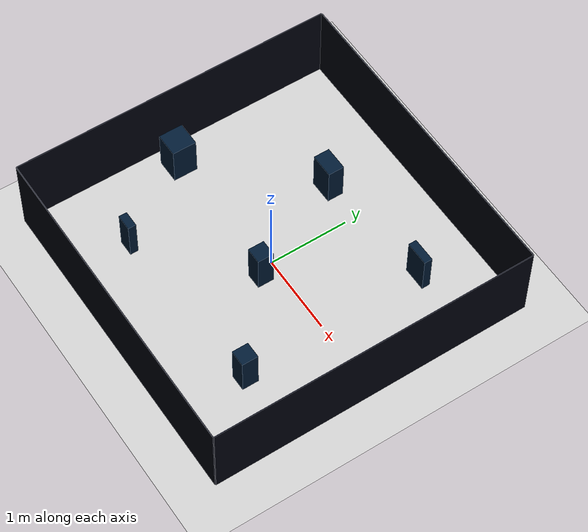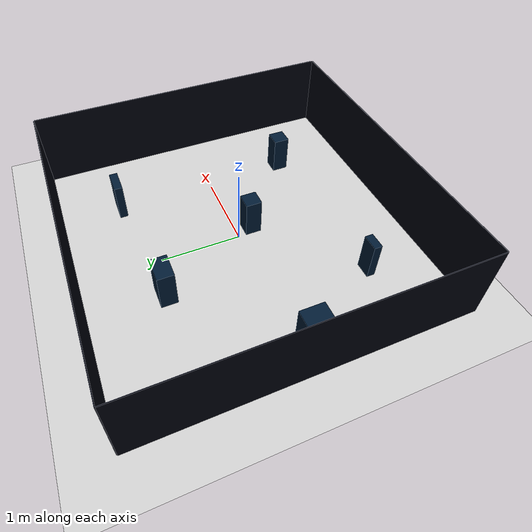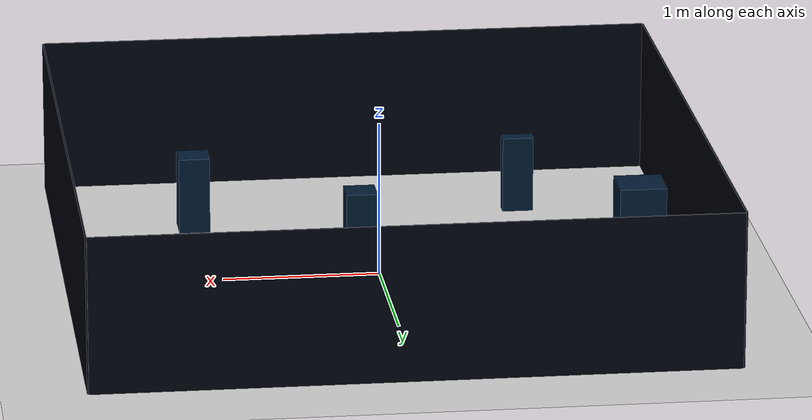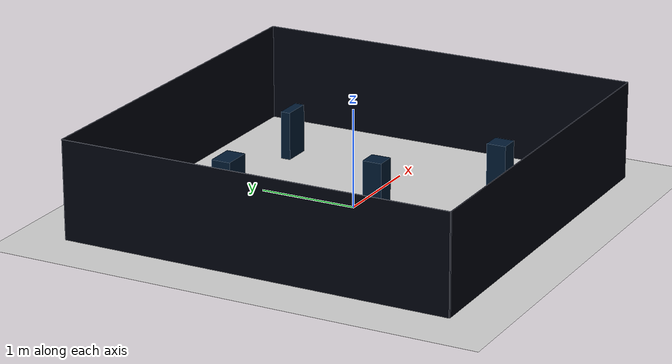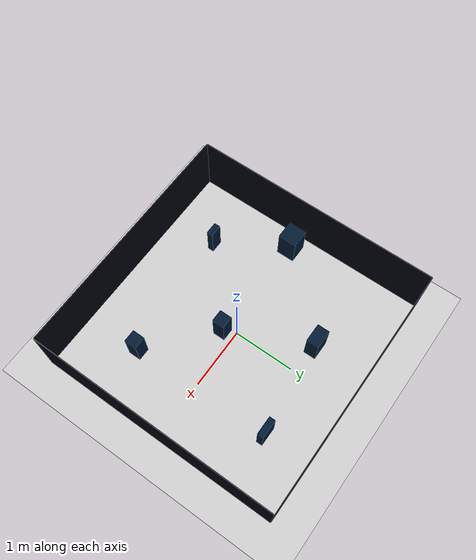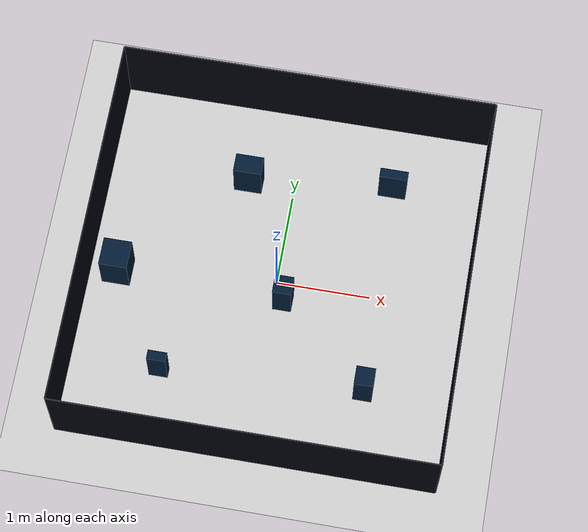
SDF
<?xml version="1.0"?>
<sdf version='1.8'>
    <world name='maze'>
        <physics name='fast_sim' type='ode'>
            <max_step_size>0.003</max_step_size>
            <real_time_factor>200</real_time_factor>
            <real_time_update_rate>1000</real_time_update_rate>
        </physics>

        <plugin name="gz::sim::systems::Physics" filename="gz-sim-physics-system" />
        <plugin name="gz::sim::systems::UserCommands" filename="gz-sim-user-commands-system" />
        <plugin name="gz::sim::systems::SceneBroadcaster" filename="gz-sim-scene-broadcaster-system" />
        <plugin name="gz::sim::systems::Contact" filename="gz-sim-contact-system" />

        <light name='sun' type='directional'>
            <cast_shadows>1</cast_shadows>
            <pose>0 0 10 0 -0 0</pose>
            <diffuse>0.8 0.8 0.8 1</diffuse>
            <specular>0.2 0.2 0.2 1</specular>
            <attenuation>
                <range>1000</range>
                <constant>0.90000000000000002</constant>
                <linear>0.01</linear>
                <quadratic>0.001</quadratic>
            </attenuation>
            <direction>-0.5 0.1 -0.9</direction>
            <spot>
                <inner_angle>0</inner_angle>
                <outer_angle>0</outer_angle>
                <falloff>0</falloff>
            </spot>
        </light>
        <gravity>0 0 -9.8</gravity>
        <magnetic_field>6e-06 2.3e-05 -4.2e-05</magnetic_field>
        <atmosphere type='adiabatic' />
        <scene>
            <ambient>0.4 0.4 0.4 1</ambient>
            <background>0.7 0.7 0.7 1</background>
            <shadows>1</shadows>
        </scene>
        <model name='ground_plane'>
            <static>1</static>
            <link name='link'>
                <collision name='collision'>
                    <geometry>
                        <plane>
                            <normal>0 0 1</normal>
                            <size>10 10</size>
                        </plane>
                    </geometry>
                    <surface>
                        <friction>
                            <ode />
                        </friction>
                        <bounce />
                        <contact />
                    </surface>
                </collision>
                <visual name='visual'>
                    <geometry>
                        <plane>
                            <normal>0 0 1</normal>
                            <size>10 10</size>
                        </plane>
                    </geometry>
                    <material>
                        <ambient>0.8 0.8 0.8 1</ambient>
                        <diffuse>0.8 0.8 0.8 1</diffuse>
                        <specular>0.8 0.8 0.8 1</specular>
                    </material>
                    <plugin name='__default__' filename='__default__' />
                </visual>
            </link>
            <plugin name='__default__' filename='__default__' />
            <pose>0 0 0 0 -0 0</pose>
        </model>

        <model name='border'>
            <pose>0 0 0.5 0 0 0</pose>
            <static>true</static>
            <link name='wall1'>
                <pose>-2.005 0 0 0 0 0</pose>
                <static>true</static>
                <collision name='wall1_collision'>
                    <geometry>
                        <box>
                            <size>0.01 4 1</size>
                        </box>
                    </geometry>
                </collision>
                <visual name='wall1_visual'>
                    <geometry>
                        <box>
                            <size>0.01 4 1</size>
                        </box>
                    </geometry>
                    <material>
                        <ambient>0.1 0.1 0.1 1</ambient>
                        <diffuse>0 0.01 0.05 1</diffuse>
                        <specular>0 0.01 0.05 1</specular>
                    </material>
                </visual>
            </link>
            <link name='wall2'>
                <pose>2.005 0 0 0 0 0</pose>
                <static>true</static>
                <collision name='wall2_collision'>
                    <geometry>
                        <box>
                            <size>0.01 4 1</size>
                        </box>
                    </geometry>
                </collision>
                <visual name='wall2_visual'>
                    <geometry>
                        <box>
                            <size>0.01 4 1</size>
                        </box>
                    </geometry>
                    <material>
                        <ambient>0.1 0.1 0.1 1</ambient>
                        <diffuse>0 0.01 0.05 1</diffuse>
                        <specular>0 0.01 0.05 1</specular>
                    </material>
                </visual>
            </link>
            <link name='wall3'>
                <pose>0 2.005 0 0 0 0</pose>
                <static>true</static>
                <collision name='wall3_collision'>
                    <geometry>
                        <box>
                            <size>4 0.01 1</size>
                        </box>
                    </geometry>
                </collision>
                <visual name='wall3_visual'>
                    <geometry>
                        <box>
                            <size>4 0.01 1</size>
                        </box>
                    </geometry>
                    <material>
                        <ambient>0.1 0.1 0.1 1</ambient>
                        <diffuse>0 0.01 0.05 1</diffuse>
                        <specular>0 0.01 0.05 1</specular>
                    </material>
                </visual>
            </link>
            <link name='wall4'>
                <pose>0 -2.005 0 0 0 0</pose>
                <static>true</static>
                <collision name='wall4_collision'>
                    <geometry>
                        <box>
                            <size>4 0.01 1</size>
                        </box>
                    </geometry>
                    <material>
                        <ambient>0.1 0.1 0.1 1</ambient>
                        <diffuse>0 0.01 0.05 1</diffuse>
                        <specular>0 0.01 0.05 1</specular>
                    </material>
                </collision>
                <visual name='wall4_visual'>
                    <geometry>
                        <box>
                            <size>4 0.01 1</size>
                        </box>
                    </geometry>
                    <material>
                        <ambient>0.1 0.1 0.1 1</ambient>
                        <diffuse>0 0.01 0.05 1</diffuse>
                        <specular>0 0.01 0.05 1</specular>
                    </material>
                </visual>
            </link>
        </model>

        <model name='obstacles'>
            <pose>0 0 0.25 0 0 0</pose>
            <static>true</static>
            <link name='wall1'>
                <pose>-1.05 -1.2 0 0 0 0</pose>
                <static>true</static>
                <collision name='wall1_collision'>
                    <geometry>
                        <box>
                            <size>0.2 0.1 0.5</size>
                        </box>
                    </geometry>
                </collision>
                <visual name='wall1_visual'>
                    <geometry>
                        <box>
                            <size>0.2 0.1 0.5</size>
                        </box>
                    </geometry>
                    <material>
                        <ambient>0.1 0.1 0.1 1</ambient>
                        <diffuse>0 0.1 0.2 1</diffuse>
                        <specular>0 0.01 0.05 1</specular>
                    </material>
                </visual>
            </link>

            <link name='wall2'>
                <pose>1.05 1.25 0 0 0 0</pose>
                <static>true</static>
                <collision name='wall2_collision'>
                    <geometry>
                        <box>
                            <size>0.3 0.1 0.5</size>
                        </box>
                    </geometry>
                </collision>
                <visual name='wall2_visual'>
                    <geometry>
                        <box>
                            <size>0.3 0.1 0.5</size>
                        </box>
                    </geometry>
                    <material>
                        <ambient>0.1 0.1 0.1 1</ambient>
                        <diffuse>0 0.1 0.2 1</diffuse>
                        <specular>0 0.01 0.05 1</specular>
                    </material>
                </visual>
            </link>

            <link name='wall3'>
                <pose>-0.5 1.1 0 0 0 0</pose>
                <static>true</static>
                <collision name='wall3_collision'>
                    <geometry>
                        <box>
                            <size>0.3 0.2 0.5</size>
                        </box>
                    </geometry>
                </collision>
                <visual name='wall3_visual'>
                    <geometry>
                        <box>
                            <size>0.3 0.2 0.5</size>
                        </box>
                    </geometry>
                    <material>
                        <ambient>0.1 0.1 0.1 1</ambient>
                        <diffuse>0 0.1 0.2 1</diffuse>
                        <specular>0 0.01 0.05 1</specular>
                    </material>
                </visual>
            </link>

            <link name='wall4'>
                <pose>0.1 -0.2 0 0 0 0</pose>
                <static>true</static>
                <collision name='wall4_collision'>
                    <geometry>
                        <box>
                            <size>0.2 0.2 0.5</size>
                        </box>
                    </geometry>
                </collision>
                <visual name='wall4_visual'>
                    <geometry>
                        <box>
                            <size>0.2 0.2 0.5</size>
                        </box>
                    </geometry>
                    <material>
                        <ambient>0.1 0.1 0.1 1</ambient>
                        <diffuse>0 0.1 0.2 1</diffuse>
                        <specular>0 0.01 0.05 1</specular>
                    </material>
                </visual>
            </link>

            <link name='wall5'>
                <pose>1.1 -1.05 0 0 0 0</pose>
                <static>true</static>
                <collision name='wall5_collision'>
                    <geometry>
                        <box>
                            <size>0.2 0.2 0.5</size>
                        </box>
                    </geometry>
                </collision>
                <visual name='wall5_visual'>
                    <geometry>
                        <box>
                            <size>0.2 0.2 0.5</size>
                        </box>
                    </geometry>
                    <material>
                        <ambient>0.1 0.1 0.1 1</ambient>
                        <diffuse>0 0.1 0.2 1</diffuse>
                        <specular>0 0.01 0.05 1</specular>
                    </material>
                </visual>
            </link>

            <link name='wall6'>
                <pose>-1.7 -0.15 0 0 0 0</pose>
                <static>true</static>
                <collision name='wall6_collision'>
                    <geometry>
                        <box>
                            <size>0.3 0.3 0.5</size>
                        </box>
                    </geometry>
                </collision>
                <visual name='wall6_visual'>
                    <geometry>
                        <box>
                            <size>0.3 0.3 0.5</size>
                        </box>
                    </geometry>
                    <material>
                        <ambient>0.1 0.1 0.1 1</ambient>
                        <diffuse>0 0.1 0.2 1</diffuse>
                        <specular>0 0.01 0.05 1</specular>
                    </material>
                </visual>
            </link>
        </model>
    </world>
</sdf>
